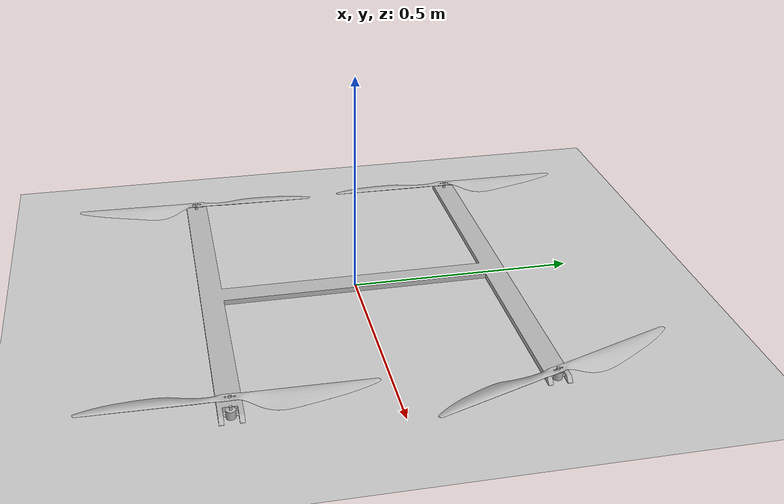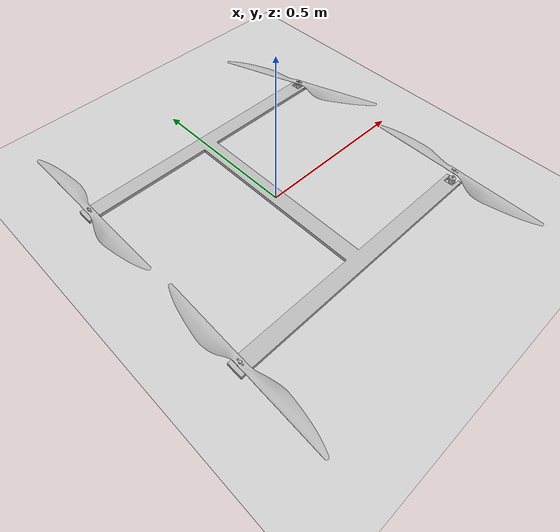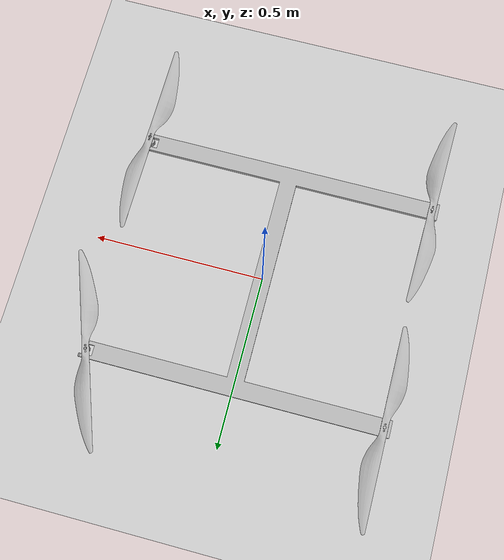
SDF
<?xml version="1.0" ?>
<sdf version="1.6">
  <world name="default">
    <gui>
      <camera name="user_camera">
        <pose>-5 0 1 0 0.2 0</pose>
      </camera>
    </gui>
    <physics type="ode">
      <ode>
        <solver>
          <type>quick</type>
          <iters>100</iters>
          <sor>1.0</sor>
        </solver>
        <constraints>
          <cfm>0.0</cfm>
          <erp>0.2</erp>
          <contact_max_correcting_vel>0.1</contact_max_correcting_vel>
          <contact_surface_layer>0.0</contact_surface_layer>
        </constraints>
      </ode>
      <real_time_update_rate>-1</real_time_update_rate>
    </physics>
    <gravity>0 0 -9.8</gravity>
    <include>
      <uri>model://sun</uri>
    </include>

    <model name="ground_plane">
      <static>true</static>
      <link name="link">
        <collision name="collision">
          <geometry>
            <plane>
              <normal>0 0 1</normal>
              <size>5000 5000</size>
            </plane>
          </geometry>
          <surface>
            <friction>
              <ode>
                <mu>100</mu>
                <mu2>50</mu2>
              </ode>
            </friction>
          </surface>
        </collision>
        <visual name="runway">
          <pose>000 0 0.005 0 0 0</pose>
          <cast_shadows>false</cast_shadows>
          <geometry>
            <plane>
              <normal>0 0 1</normal>
              <size>1829 45</size>
            </plane>
          </geometry>
          <material>
            <script>
              <uri>file://media/materials/scripts/gazebo.material</uri>
              <name>Gazebo/Runway</name>
            </script>
          </material>
        </visual>

      </link>
    </model>

    <model name="h_frame_tilt">
      <include>
        <uri>model://h_frame_tilt</uri>
      </include>
    </model>
  </world>
</sdf>

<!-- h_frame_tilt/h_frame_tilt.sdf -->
<sdf version='1.6'>
  <model name='h_frame_tilt'>
    <link name='base_link'>
      <pose frame=''>0 0 0 0 -0 0</pose>
      <inertial>
        <pose frame=''>-0.008889 0 1.8e-05 0 -0 0</pose>
        <mass>1.31847</mass>
        <inertia>
          <ixx>0.114109</ixx>
          <ixy>-6.09508e-15</ixy>
          <ixz>2.32413e-06</ixz>
          <iyy>0.0633109</iyy>
          <iyz>-1.95647e-13</iyz>
          <izz>0.177329</izz>
        </inertia>
      </inertial>
      <collision name='base_link_collision'>
        <pose frame=''>0 0 0 0 -0 0</pose>
        <geometry>
          <mesh>
            <scale>1 1 1</scale>
            <uri>model://h_frame_tilt/meshes/base_link.STL</uri>
          </mesh>
        </geometry>
      </collision>
      <collision name='base_link_fixed_joint_lump__motor_0_collision_1'>
        <pose frame=''>0.43 -0.3 0.005 0 -0 0</pose>
        <geometry>
          <mesh>
            <scale>1 1 1</scale>
            <uri>model://h_frame_tilt/meshes/motor_0.STL</uri>
          </mesh>
        </geometry>
      </collision>
      <collision name='base_link_fixed_joint_lump__motor_2_collision_2'>
        <pose frame=''>0.43 0.3 0.005 0 -0 0</pose>
        <geometry>
          <mesh>
            <scale>1 1 1</scale>
            <uri>model://h_frame_tilt/meshes/motor_2.STL</uri>
          </mesh>
        </geometry>
      </collision>
      <visual name='base_link_visual'>
        <pose frame=''>0 0 0 0 -0 0</pose>
        <geometry>
          <mesh>
            <scale>1 1 1</scale>
            <uri>model://h_frame_tilt/meshes/base_link.STL</uri>
          </mesh>
        </geometry>
      </visual>
      <visual name='base_link_fixed_joint_lump__motor_0_visual_1'>
        <pose frame=''>0.43 -0.3 0.005 0 -0 0</pose>
        <geometry>
          <mesh>
            <scale>1 1 1</scale>
            <uri>model://h_frame_tilt/meshes/motor_0.STL</uri>
          </mesh>
        </geometry>
      </visual>
      <visual name='base_link_fixed_joint_lump__motor_2_visual_2'>
        <pose frame=''>0.43 0.3 0.005 0 -0 0</pose>
        <geometry>
          <mesh>
            <scale>1 1 1</scale>
            <uri>model://h_frame_tilt/meshes/motor_2.STL</uri>
          </mesh>
        </geometry>
      </visual>
    </link>
    <link name='h_frame_tilt/imu_link'>
      <inertial>
        <pose>0 0 0 0 0 0</pose>
        <mass>0.15</mass>
        <inertia>
          <ixx>0.00001</ixx>
          <ixy>0</ixy>
          <ixz>0</ixz>
          <iyy>0.00002</iyy>
          <iyz>0</iyz>
          <izz>0.00002</izz>
        </inertia>
      </inertial>
      <sensor name="imu_sensor" type="imu">
        <pose>0 0 0 3.141593 0 0</pose>
        <always_on>1</always_on>
        <update_rate>1000.0</update_rate>
      </sensor>
    </link>
    <joint name='h_frame_tilt/imu_joint' type='revolute'>
      <child>h_frame_tilt/imu_link</child>
      <parent>base_link</parent>
      <axis>
        <xyz>0 0 1</xyz>
        <limit>
          <lower>0</lower>
          <upper>0</upper>
          <effort>0</effort>
          <velocity>0</velocity>
        </limit>
        <dynamics>
          <damping>1.0</damping>
        </dynamics>
        <use_parent_model_frame>1</use_parent_model_frame>
      </axis>
      <physics>
        <ode>
          <implicit_spring_damper>1</implicit_spring_damper>
        </ode>
      </physics>
    </joint>
    <link name='rotor_0'>
      <pose frame=''>0.43 -0.325 0.026 0 -0 0</pose>
      <inertial>
        <pose frame=''>0 0 -0.00744 0 -0 0</pose>
        <mass>0.067291</mass>
        <inertia>
          <ixx>0.0014412</ixx>
          <ixy>-7.5965e-05</ixy>
          <ixz>-8.781e-13</ixz>
          <iyy>1.2633e-05</iyy>
          <iyz>-3.4466e-12</iyz>
          <izz>0.0014525</izz>
        </inertia>
      </inertial>
      <collision name='rotor_0_collision'>
        <pose frame=''>0 0 0 0 -0 0</pose>
        <geometry>
          <mesh>
            <scale>1 1 1</scale>
            <uri>model://h_frame_tilt/meshes/rotor_0.STL</uri>
          </mesh>
        </geometry>
      </collision>
      <visual name='rotor_0_visual'>
        <pose frame=''>0 0 0 0 -0 0</pose>
        <geometry>
          <mesh>
            <scale>1 1 1</scale>
            <uri>model://h_frame_tilt/meshes/rotor_0.STL</uri>
          </mesh>
        </geometry>
      </visual>
    </link>
    <joint name='rotor_0_joint' type='revolute'>
      <child>rotor_0</child>
      <parent>base_link</parent>
      <axis>
        <xyz>0 0 1</xyz>
        <limit>
          <lower>-1e+16</lower>
          <upper>1e+16</upper>
        </limit>
        <dynamics>
          <damping>0.004</damping>
          <spring_reference>0</spring_reference>
          <spring_stiffness>0</spring_stiffness>
        </dynamics>
        <use_parent_model_frame>1</use_parent_model_frame>
      </axis>
      <physics>
          <ode>
            <implicit_spring_damper>1</implicit_spring_damper>
          </ode>
      </physics>
    </joint>
    <link name='rotor_2'>
      <pose frame=''>0.43 0.325 0.026 0 -0 0</pose>
      <inertial>
        <pose frame=''>0 0 -0.00744 0 -0 0</pose>
        <mass>0.067292</mass>
        <inertia>
          <ixx>0.0014451</ixx>
          <ixy>-1.3765e-05</ixy>
          <ixz>-1.154e-12</ixz>
          <iyy>8.7366e-06</iyy>
          <iyz>-9.362e-13</iyz>
          <izz>0.0014525</izz>
        </inertia>
      </inertial>
      <collision name='rotor_2_collision'>
        <pose frame=''>0 0 0 0 -0 0</pose>
        <geometry>
          <mesh>
            <scale>1 1 1</scale>
            <uri>model://h_frame_tilt/meshes/rotor_2.STL</uri>
          </mesh>
        </geometry>
      </collision>
      <visual name='rotor_2_visual'>
        <pose frame=''>0 0 0 0 -0 0</pose>
        <geometry>
          <mesh>
            <scale>1 1 1</scale>
            <uri>model://h_frame_tilt/meshes/rotor_2.STL</uri>
          </mesh>
        </geometry>
      </visual>
    </link>
    <joint name='rotor_2_joint' type='revolute'>
      <child>rotor_2</child>
      <parent>base_link</parent>
      <axis>
        <xyz>0 0 1</xyz>
        <limit>
          <lower>-1e+16</lower>
          <upper>1e+16</upper>
        </limit>
        <dynamics>
          <damping>0.004</damping>
          <spring_reference>0</spring_reference>
          <spring_stiffness>0</spring_stiffness>
        </dynamics>
        <use_parent_model_frame>1</use_parent_model_frame>
      </axis>
      <physics>
          <ode>
            <implicit_spring_damper>1</implicit_spring_damper>
          </ode>
      </physics>
    </joint>
    <link name='rotor_1'>
      <pose frame=''>-0.43 0.325 0.003413 0 -0 0</pose>
      <inertial>
        <pose frame=''>-0 0 0.015147 0 -0 0</pose>
        <mass>0.067291</mass>
        <inertia>
          <ixx>0.0014428</ixx>
          <ixy>5.9289e-05</ixy>
          <ixz>1.6714e-12</ixz>
          <iyy>1.1056e-05</iyy>
          <iyz>-1.5765e-12</iyz>
          <izz>0.0014525</izz>
        </inertia>
      </inertial>
      <collision name='rotor_1_collision'>
        <pose frame=''>0 0 0 0 -0 0</pose>
        <geometry>
          <mesh>
            <scale>1 1 1</scale>
            <uri>model://h_frame_tilt/meshes/rotor_1.STL</uri>
          </mesh>
        </geometry>
      </collision>
      <visual name='rotor_1_visual'>
        <pose frame=''>0 0 0 0 -0 0</pose>
        <geometry>
          <mesh>
            <scale>1 1 1</scale>
            <uri>model://h_frame_tilt/meshes/rotor_1.STL</uri>
          </mesh>
        </geometry>
      </visual>
    </link>
    <joint name='rotor_1_joint' type='revolute'>
      <child>rotor_1</child>
      <parent>base_link</parent>
      <axis>
        <xyz>0 0 1</xyz>
        <limit>
          <lower>-1e+16</lower>
          <upper>1e+16</upper>
        </limit>
        <dynamics>
          <damping>0.004</damping>
          <spring_reference>0</spring_reference>
          <spring_stiffness>0</spring_stiffness>
        </dynamics>
        <use_parent_model_frame>1</use_parent_model_frame>
      </axis>
      <physics>
          <ode>
            <implicit_spring_damper>1</implicit_spring_damper>
          </ode>
      </physics>
    </joint>
    <link name='rotor_3'>
      <pose frame=''>-0.43 -0.325 0.003413 0 -0 0</pose>
      <inertial>
        <pose frame=''>0 -0 0.015147 0 -0 0</pose>
        <mass>0.067296</mass>
        <inertia>
          <ixx>0.0014418</ixx>
          <ixy>-7.2037e-05</ixy>
          <ixz>-1.1454e-12</ixz>
          <iyy>1.2226e-05</iyy>
          <iyz>1.0716e-12</iyz>
          <izz>0.0014526</izz>
        </inertia>
      </inertial>
      <collision name='rotor_3_collision'>
        <pose frame=''>0 0 0 0 -0 0</pose>
        <geometry>
          <mesh>
            <scale>1 1 1</scale>
            <uri>model://h_frame_tilt/meshes/rotor_3.STL</uri>
          </mesh>
        </geometry>
      </collision>
      <visual name='rotor_3_visual'>
        <pose frame=''>0 0 0 0 -0 0</pose>
        <geometry>
          <mesh>
            <scale>1 1 1</scale>
            <uri>model://h_frame_tilt/meshes/rotor_3.STL</uri>
          </mesh>
        </geometry>
      </visual>
    </link>
    <joint name='rotor_3_joint' type='revolute'>
      <child>rotor_3</child>
      <parent>base_link</parent>
      <axis>
        <xyz>0 0 1</xyz>
        <limit>
          <lower>-1e+16</lower>
          <upper>1e+16</upper>
        </limit>
        <dynamics>
          <damping>0.004</damping>
          <spring_reference>0</spring_reference>
          <spring_stiffness>0</spring_stiffness>
        </dynamics>
        <use_parent_model_frame>1</use_parent_model_frame>
      </axis>
      <physics>
          <ode>
            <implicit_spring_damper>1</implicit_spring_damper>
          </ode>
      </physics>
    </joint>

  <plugin name="rotor_0_blade_1" filename="libLiftDragPlugin.so">
      <a0>0.3</a0>
      <alpha_stall>1.4</alpha_stall>
      <cla>4.2500</cla>
      <cda>0.10</cda>
      <cma>0.00</cma>
      <cla_stall>-0.025</cla_stall>
      <cda_stall>0.0</cda_stall>
      <cma_stall>0.0</cma_stall>
      <area>0.01</area>
      <air_density>1.2041</air_density>
      <cp>0  0.093 0</cp>
      <forward>-1 0 0</forward>
      <upward>0 0 1</upward>
      <link_name>rotor_0</link_name>
    </plugin>
    <plugin name="rotor_0_blade_2" filename="libLiftDragPlugin.so">
      <a0>0.3</a0>
      <alpha_stall>1.4</alpha_stall>
      <cla>4.2500</cla>
      <cda>0.10</cda>
      <cma>0.00</cma>
      <cla_stall>-0.025</cla_stall>
      <cda_stall>0.0</cda_stall>
      <cma_stall>0.0</cma_stall>
      <area>0.01</area>
      <air_density>1.2041</air_density>
       <cp>0 -0.093 0</cp>
      <forward>1 0 0</forward>
      <upward>0 0 1</upward>
      <link_name>rotor_0</link_name>
    </plugin>
 <plugin name="rotor_1_blade_1" filename="libLiftDragPlugin.so">
      <a0>0.3</a0>
      <alpha_stall>1.4</alpha_stall>
      <cla>4.2500</cla>
      <cda>0.10</cda>
      <cma>0.00</cma>
      <cla_stall>-0.025</cla_stall>
      <cda_stall>0.0</cda_stall>
      <cma_stall>0.0</cma_stall>
      <area>0.01</area>
      <air_density>1.2041</air_density>
       <cp>0 0.093 0</cp>
      <forward>-1 0 0</forward>
      <upward>0 0 1</upward>
      <link_name>rotor_1</link_name>
    </plugin>
    <plugin name="rotor_1_blade_2" filename="libLiftDragPlugin.so">
      <a0>0.3</a0>
      <alpha_stall>1.4</alpha_stall>
      <cla>4.2500</cla>
      <cda>0.10</cda>
      <cma>0.00</cma>
      <cla_stall>-0.025</cla_stall>
      <cda_stall>0.0</cda_stall>
      <cma_stall>0.0</cma_stall>
      <area>0.01</area>
      <air_density>1.2041</air_density>
      <cp>0  -0.093 0</cp>
      <forward>1 0 0</forward>
      <upward>0 0 1</upward>
      <link_name>rotor_1</link_name>
    </plugin>
<plugin name="rotor_2_blade_1" filename="libLiftDragPlugin.so">
      <a0>0.3</a0>
      <alpha_stall>1.4</alpha_stall>
      <cla>4.2500</cla>
      <cda>0.10</cda>
      <cma>0.00</cma>
      <cla_stall>-0.025</cla_stall>
      <cda_stall>0.0</cda_stall>
      <cma_stall>0.0</cma_stall>
      <area>0.01</area>
      <air_density>1.2041</air_density>
      <cp>0  0.093 0</cp>
      <forward>1 0 0</forward>
      <upward>0 0 1</upward>
      <link_name>rotor_2</link_name>
    </plugin>
    <plugin name="rotor_2_blade_2" filename="libLiftDragPlugin.so">
      <a0>0.3</a0>
      <alpha_stall>1.4</alpha_stall>
      <cla>4.2500</cla>
      <cda>0.10</cda>
      <cma>0.00</cma>
      <cla_stall>-0.025</cla_stall>
      <cda_stall>0.0</cda_stall>
      <cma_stall>0.0</cma_stall>
      <area>0.01</area>
      <air_density>1.2041</air_density>
       <cp>0 -0.093 0</cp>
      <forward>-1 0 0</forward>
      <upward>0 0 1</upward>
      <link_name>rotor_2</link_name>
    </plugin>
<plugin name="rotor_3_blade_1" filename="libLiftDragPlugin.so">
      <a0>0.3</a0>
      <alpha_stall>1.4</alpha_stall>
      <cla>4.2500</cla>
      <cda>0.10</cda>
      <cma>0.00</cma>
      <cla_stall>-0.025</cla_stall>
      <cda_stall>0.0</cda_stall>
      <cma_stall>0.0</cma_stall>
      <area>0.01</area>
      <air_density>1.2041</air_density>
      <cp>0  0.093 0</cp>
      <forward>1 0 0</forward>
      <upward>0 0 1</upward>
      <link_name>rotor_3</link_name>
    </plugin>
    <plugin name="rotor_3_blade_2" filename="libLiftDragPlugin.so">
      <a0>0.3</a0>
      <alpha_stall>1.4</alpha_stall>
      <cla>4.2500</cla>
      <cda>0.10</cda>
      <cma>0.00</cma>
      <cla_stall>-0.025</cla_stall>
      <cda_stall>0.0</cda_stall>
      <cma_stall>0.0</cma_stall>
      <area>0.01</area>
      <air_density>1.2041</air_density>
       <cp>0 -0.093 0</cp>
      <forward>-1 0 0</forward>
      <upward>0 0 1</upward>
      <link_name>rotor_3</link_name>
    </plugin>
 <plugin name="arducopter_plugin" filename="libArduPilotPlugin.so">
      <fdm_addr>127.0.0.1</fdm_addr>
      <fdm_port_in>9002</fdm_port_in>
      <fdm_port_out>9003</fdm_port_out>
      <!--
          Require by APM :
          Only change model and gazebo from XYZ to XY-Z coordinates
      -->
      <modelXYZToAirplaneXForwardZDown>0 0 0 3.141593 0 0</modelXYZToAirplaneXForwardZDown>
      <gazeboXYZToNED>0 0 0 3.141593 0 0</gazeboXYZToNED>
      <imuName>h_frame_tilt/imu_link::imu_sensor</imuName>
      <connectionTimeoutMaxCount>5</connectionTimeoutMaxCount>
      <control channel="4">
        <type>VELOCITY</type>
        <offset>0</offset>
        <p_gain>0.20</p_gain>
        <i_gain>0</i_gain>
        <d_gain>0</d_gain>
        <i_max>0</i_max>
        <i_min>0</i_min>
        <cmd_max>2.5</cmd_max>
        <cmd_min>-2.5</cmd_min>
        <jointName>rotor_0_joint</jointName>
        <multiplier>838</multiplier>
        <controlVelocitySlowdownSim>1</controlVelocitySlowdownSim>
      </control>
      <control channel="5">
        <type>VELOCITY</type>
        <offset>0</offset>
        <p_gain>0.20</p_gain>
        <i_gain>0</i_gain>
        <d_gain>0</d_gain>
        <i_max>0</i_max>
        <i_min>0</i_min>
        <cmd_max>2.5</cmd_max>
        <cmd_min>-2.5</cmd_min>
        <jointName>rotor_1_joint</jointName>
        <multiplier>838</multiplier>
        <controlVelocitySlowdownSim>1</controlVelocitySlowdownSim>
      </control>
      <control channel="6">
        <type>VELOCITY</type>
        <offset>0</offset>
        <p_gain>0.20</p_gain>
        <i_gain>0</i_gain>
        <d_gain>0</d_gain>
        <i_max>0</i_max>
        <i_min>0</i_min>
        <cmd_max>2.5</cmd_max>
        <cmd_min>-2.5</cmd_min>
        <jointName>rotor_2_joint</jointName>
        <multiplier>-838</multiplier>
        <controlVelocitySlowdownSim>1</controlVelocitySlowdownSim>
      </control>
      <control channel="7">
        <type>VELOCITY</type>
        <offset>0</offset>
        <p_gain>0.20</p_gain>
        <i_gain>0</i_gain>
        <d_gain>0</d_gain>
        <i_max>0</i_max>
        <i_min>0</i_min>
        <cmd_max>2.5</cmd_max>
        <cmd_min>-2.5</cmd_min>
        <jointName>rotor_3_joint</jointName>
        <multiplier>-838</multiplier>
        <controlVelocitySlowdownSim>1</controlVelocitySlowdownSim>
      </control>
    </plugin>

  </model>
</sdf>
